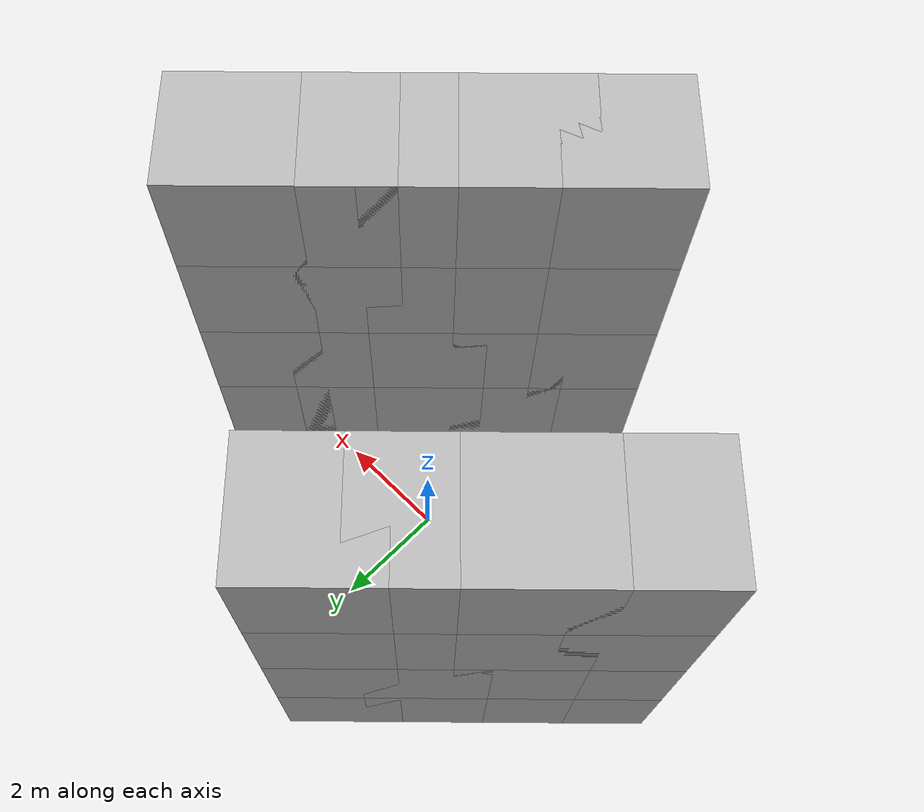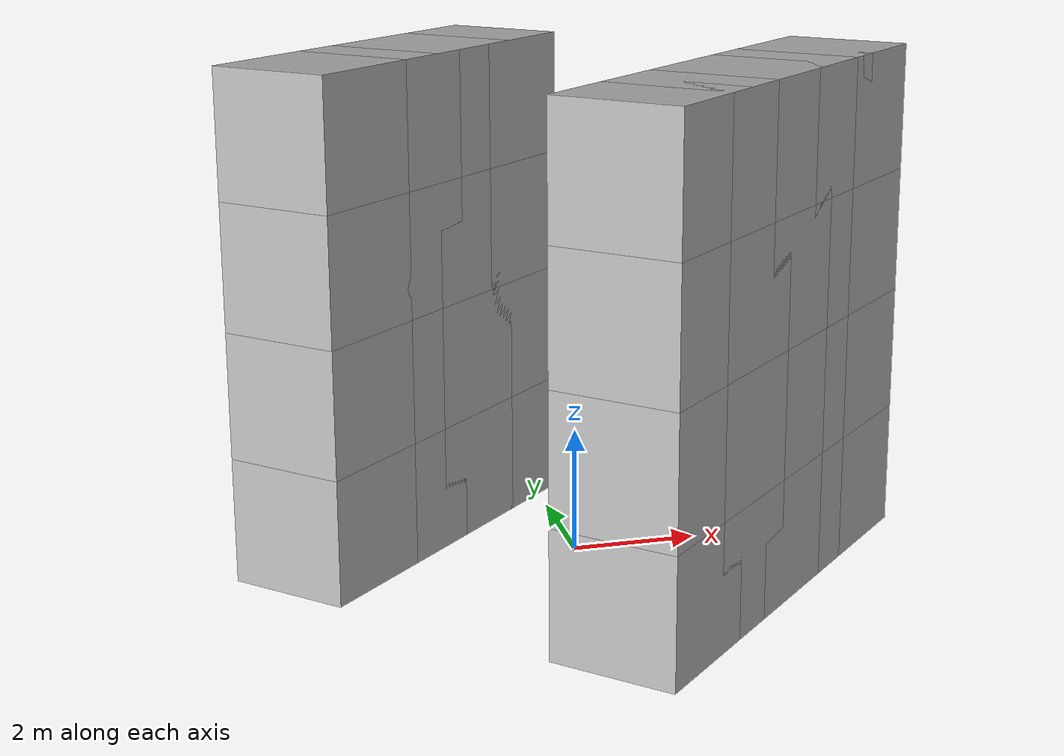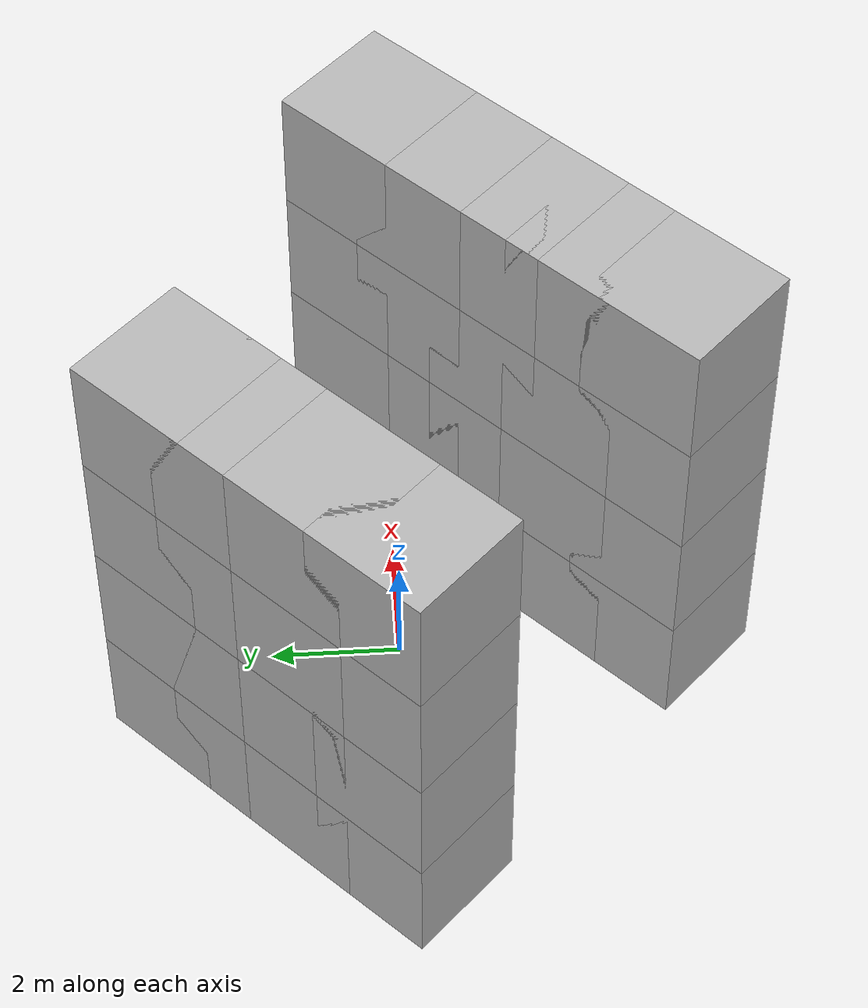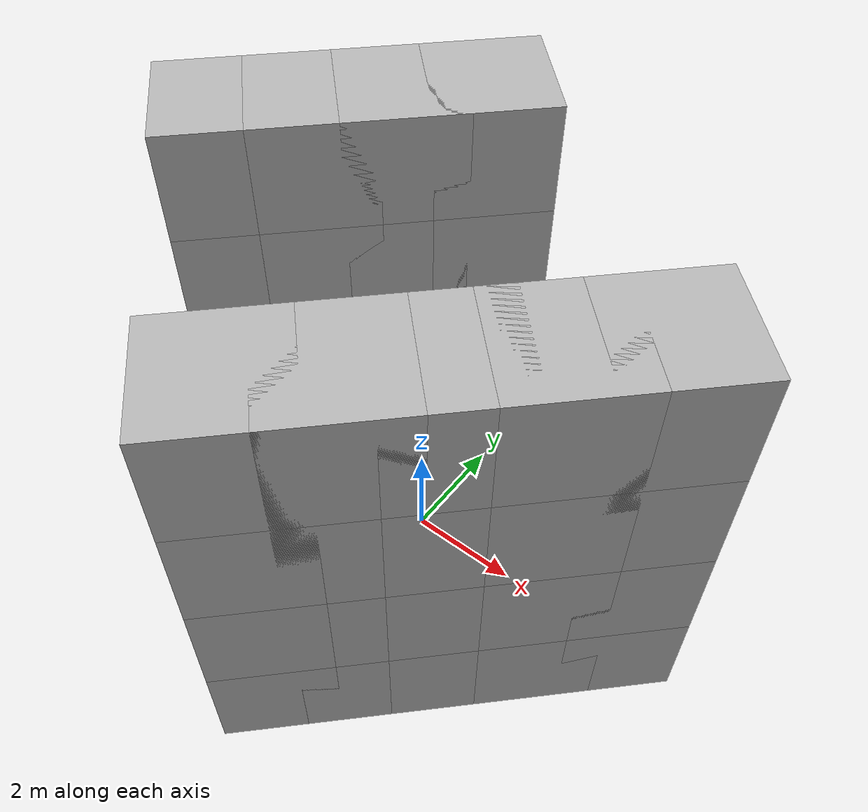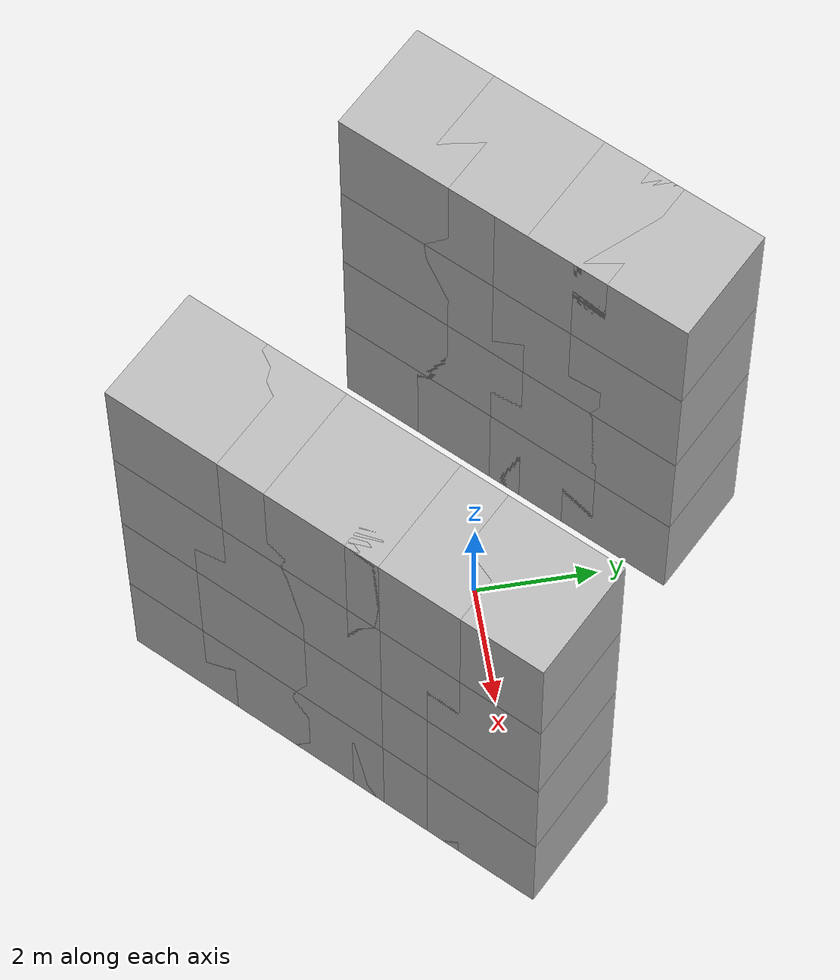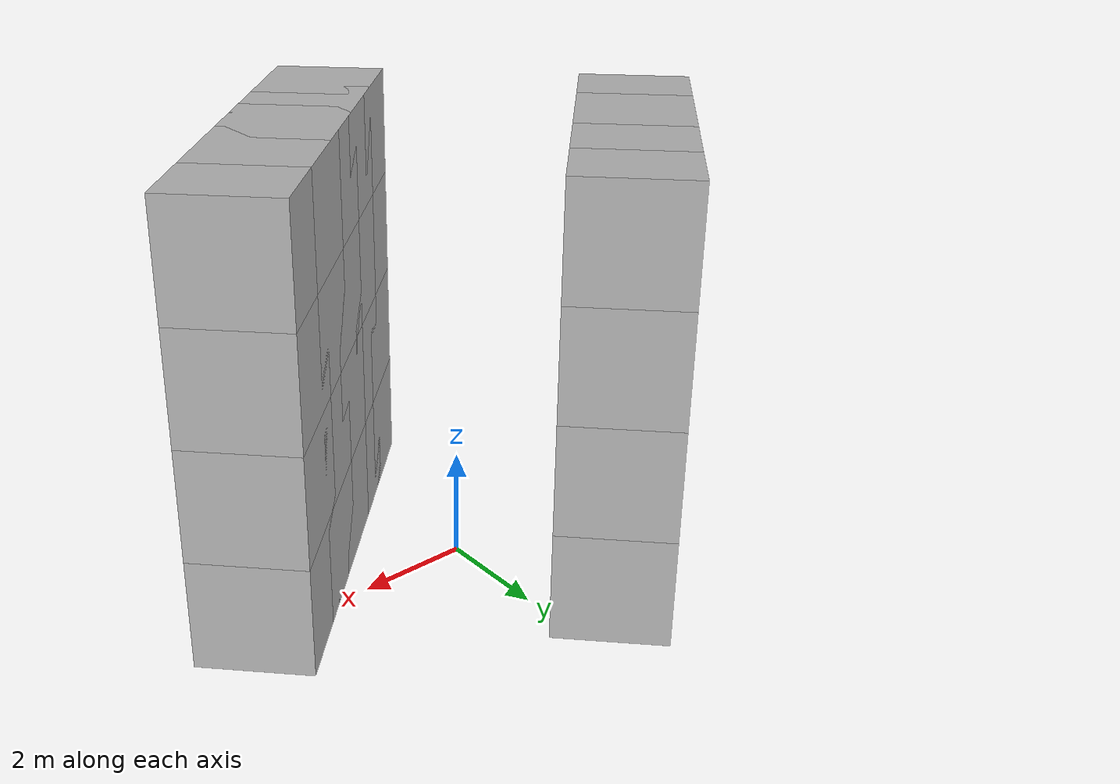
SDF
<sdf version="1.5">
 <world name="default">
  <include><uri>model://sun</uri></include>
  <physics name="default_physics" default="0" type="ode">
   <gravity>0 0 -9.8066</gravity>
   <ode>
    <solver>
     <type>quick</type>
     <iters>10</iters>
     <sor>1.3</sor>
     <use_dynamic_moi_rescaling>0</use_dynamic_moi_rescaling>
    </solver>
    <constraints>
     <cfm>0</cfm>
     <erp>0.2</erp>
     <contact_max_correcting_vel>100</contact_max_correcting_vel>
     <contact_surface_layer>0.001</contact_surface_layer>
    </constraints>
   </ode>
   <max_step_size>0.004</max_step_size>
   <real_time_factor>1</real_time_factor>
   <real_time_update_rate>250</real_time_update_rate>
   <magnetic_field>6.0e-6 2.3e-5 -4.2e-5</magnetic_field>
  </physics>
  <model name="obstacle_left_1">
   <static>true</static>
   <pose>-4 0 1 0 0 0.78539816339</pose>
   <link name="link">
    <collision name="collision"><geometry><box><size>2 2 2</size></box></geometry></collision>
    <visual name="visual"><geometry><box><size>2 2 2</size></box></geometry></visual>
   </link>
  </model>
  <model name="obstacle_left_11">
   <static>true</static>
   <pose>-4 0 3 0 0 0.78539816339</pose>
   <link name="link">
    <collision name="collision"><geometry><box><size>2 2 2</size></box></geometry></collision>
    <visual name="visual"><geometry><box><size>2 2 2</size></box></geometry></visual>
   </link>
  </model>
  <model name="obstacle_left_12">
   <static>true</static>
   <pose>-4 0 5 0 0 0.78539816339</pose>
   <link name="link">
    <collision name="collision"><geometry><box><size>2 2 2</size></box></geometry></collision>
    <visual name="visual"><geometry><box><size>2 2 2</size></box></geometry></visual>
   </link>
  </model>
  <model name="obstacle_left_13">
   <static>true</static>
   <pose>-4 0 7 0 0 0.78539816339</pose>
   <link name="link">
    <collision name="collision"><geometry><box><size>2 2 2</size></box></geometry></collision>
    <visual name="visual"><geometry><box><size>2 2 2</size></box></geometry></visual>
   </link>
  </model>
  <model name="obstacle_left_2">
   <static>true</static>
   <pose>-3 1 1 0 0 0.78539816339</pose>
   <link name="link">
    <collision name="collision"><geometry><box><size>2 2 2</size></box></geometry></collision>
    <visual name="visual"><geometry><box><size>2 2 2</size></box></geometry></visual>
   </link>
  </model>
  <model name="obstacle_left_21">
   <static>true</static>
   <pose>-3 1 3 0 0 0.78539816339</pose>
   <link name="link">
    <collision name="collision"><geometry><box><size>2 2 2</size></box></geometry></collision>
    <visual name="visual"><geometry><box><size>2 2 2</size></box></geometry></visual>
   </link>
  </model>
  <model name="obstacle_left_22">
   <static>true</static>
   <pose>-3 1 5 0 0 0.78539816339</pose>
   <link name="link">
    <collision name="collision"><geometry><box><size>2 2 2</size></box></geometry></collision>
    <visual name="visual"><geometry><box><size>2 2 2</size></box></geometry></visual>
   </link>
  </model>
  <model name="obstacle_left_23">
   <static>true</static>
   <pose>-3 1 7 0 0 0.78539816339</pose>
   <link name="link">
    <collision name="collision"><geometry><box><size>2 2 2</size></box></geometry></collision>
    <visual name="visual"><geometry><box><size>2 2 2</size></box></geometry></visual>
   </link>
  </model>
  <model name="obstacle_left_3">
   <static>true</static>
   <pose>-2 2 1 0 0 0.78539816339</pose>
   <link name="link">
    <collision name="collision"><geometry><box><size>2 2 2</size></box></geometry></collision>
    <visual name="visual"><geometry><box><size>2 2 2</size></box></geometry></visual>
   </link>
  </model>
  <model name="obstacle_left_31">
   <static>true</static>
   <pose>-2 2 3 0 0 0.78539816339</pose>
   <link name="link">
    <collision name="collision"><geometry><box><size>2 2 2</size></box></geometry></collision>
    <visual name="visual"><geometry><box><size>2 2 2</size></box></geometry></visual>
   </link>
  </model>
  <model name="obstacle_left_32">
   <static>true</static>
   <pose>-2 2 5 0 0 0.78539816339</pose>
   <link name="link">
    <collision name="collision"><geometry><box><size>2 2 2</size></box></geometry></collision>
    <visual name="visual"><geometry><box><size>2 2 2</size></box></geometry></visual>
   </link>
  </model>
  <model name="obstacle_left_33">
   <static>true</static>
   <pose>-2 2 7 0 0 0.78539816339</pose>
   <link name="link">
    <collision name="collision"><geometry><box><size>2 2 2</size></box></geometry></collision>
    <visual name="visual"><geometry><box><size>2 2 2</size></box></geometry></visual>
   </link>
  </model>
  <model name="obstacle_left_4">
   <static>true</static>
   <pose>-1 3 1 0 0 0.78539816339</pose>
   <link name="link">
    <collision name="collision"><geometry><box><size>2 2 2</size></box></geometry></collision>
    <visual name="visual"><geometry><box><size>2 2 2</size></box></geometry></visual>
   </link>
  </model>
  <model name="obstacle_left_41">
   <static>true</static>
   <pose>-1 3 3 0 0 0.78539816339</pose>
   <link name="link">
    <collision name="collision"><geometry><box><size>2 2 2</size></box></geometry></collision>
    <visual name="visual"><geometry><box><size>2 2 2</size></box></geometry></visual>
   </link>
  </model>
  <model name="obstacle_left_42">
   <static>true</static>
   <pose>-1 3 5 0 0 0.78539816339</pose>
   <link name="link">
    <collision name="collision"><geometry><box><size>2 2 2</size></box></geometry></collision>
    <visual name="visual"><geometry><box><size>2 2 2</size></box></geometry></visual>
   </link>
  </model>
  <model name="obstacle_left_43">
   <static>true</static>
   <pose>-1 3 7 0 0 0.78539816339</pose>
   <link name="link">
    <collision name="collision"><geometry><box><size>2 2 2</size></box></geometry></collision>
    <visual name="visual"><geometry><box><size>2 2 2</size></box></geometry></visual>
   </link>
  </model>
  <model name="obstacle_left_10">
   <static>true</static>
   <pose>4 0 1 0 0 0.78539816339</pose>
   <link name="link">
    <collision name="collision"><geometry><box><size>2 2 2</size></box></geometry></collision>
    <visual name="visual"><geometry><box><size>2 2 2</size></box></geometry></visual>
   </link>
  </model>
  <model name="obstacle_left_101">
   <static>true</static>
   <pose>4 0 3 0 0 0.78539816339</pose>
   <link name="link">
    <collision name="collision"><geometry><box><size>2 2 2</size></box></geometry></collision>
    <visual name="visual"><geometry><box><size>2 2 2</size></box></geometry></visual>
   </link>
  </model>
  <model name="obstacle_left_102">
   <static>true</static>
   <pose>4 0 5 0 0 0.78539816339</pose>
   <link name="link">
    <collision name="collision"><geometry><box><size>2 2 2</size></box></geometry></collision>
    <visual name="visual"><geometry><box><size>2 2 2</size></box></geometry></visual>
   </link>
  </model>
  <model name="obstacle_left_103">
   <static>true</static>
   <pose>4 0 7 0 0 0.78539816339</pose>
   <link name="link">
    <collision name="collision"><geometry><box><size>2 2 2</size></box></geometry></collision>
    <visual name="visual"><geometry><box><size>2 2 2</size></box></geometry></visual>
   </link>
  </model>
  <model name="obstacle_left_11">
   <static>true</static>
   <pose>3 -1 1 0 0 0.78539816339</pose>
   <link name="link">
    <collision name="collision"><geometry><box><size>2 2 2</size></box></geometry></collision>
    <visual name="visual"><geometry><box><size>2 2 2</size></box></geometry></visual>
   </link>
  </model>
  <model name="obstacle_left_111">
   <static>true</static>
   <pose>3 -1 3 0 0 0.78539816339</pose>
   <link name="link">
    <collision name="collision"><geometry><box><size>2 2 2</size></box></geometry></collision>
    <visual name="visual"><geometry><box><size>2 2 2</size></box></geometry></visual>
   </link>
  </model>
  <model name="obstacle_left_112">
   <static>true</static>
   <pose>3 -1 5 0 0 0.78539816339</pose>
   <link name="link">
    <collision name="collision"><geometry><box><size>2 2 2</size></box></geometry></collision>
    <visual name="visual"><geometry><box><size>2 2 2</size></box></geometry></visual>
   </link>
  </model>
  <model name="obstacle_left_113">
   <static>true</static>
   <pose>3 -1 7 0 0 0.78539816339</pose>
   <link name="link">
    <collision name="collision"><geometry><box><size>2 2 2</size></box></geometry></collision>
    <visual name="visual"><geometry><box><size>2 2 2</size></box></geometry></visual>
   </link>
  </model>
  <model name="obstacle_left_12">
   <static>true</static>
   <pose>2 -2 1 0 0 0.78539816339</pose>
   <link name="link">
    <collision name="collision"><geometry><box><size>2 2 2</size></box></geometry></collision>
    <visual name="visual"><geometry><box><size>2 2 2</size></box></geometry></visual>
   </link>
  </model>
  <model name="obstacle_left_121">
   <static>true</static>
   <pose>2 -2 3 0 0 0.78539816339</pose>
   <link name="link">
    <collision name="collision"><geometry><box><size>2 2 2</size></box></geometry></collision>
    <visual name="visual"><geometry><box><size>2 2 2</size></box></geometry></visual>
   </link>
  </model>
  <model name="obstacle_left_122">
   <static>true</static>
   <pose>2 -2 5 0 0 0.78539816339</pose>
   <link name="link">
    <collision name="collision"><geometry><box><size>2 2 2</size></box></geometry></collision>
    <visual name="visual"><geometry><box><size>2 2 2</size></box></geometry></visual>
   </link>
  </model>
  <model name="obstacle_left_123">
   <static>true</static>
   <pose>2 -2 7 0 0 0.78539816339</pose>
   <link name="link">
    <collision name="collision"><geometry><box><size>2 2 2</size></box></geometry></collision>
    <visual name="visual"><geometry><box><size>2 2 2</size></box></geometry></visual>
   </link>
  </model>
  <model name="obstacle_left_13">
   <static>true</static>
   <pose>1 -3 1 0 0 0.78539816339</pose>
   <link name="link">
    <collision name="collision"><geometry><box><size>2 2 2</size></box></geometry></collision>
    <visual name="visual"><geometry><box><size>2 2 2</size></box></geometry></visual>
   </link>
  </model>
  <model name="obstacle_left_131">
   <static>true</static>
   <pose>1 -3 3 0 0 0.78539816339</pose>
   <link name="link">
    <collision name="collision"><geometry><box><size>2 2 2</size></box></geometry></collision>
    <visual name="visual"><geometry><box><size>2 2 2</size></box></geometry></visual>
   </link>
  </model>
  <model name="obstacle_left_132">
   <static>true</static>
   <pose>1 -3 5 0 0 0.78539816339</pose>
   <link name="link">
    <collision name="collision"><geometry><box><size>2 2 2</size></box></geometry></collision>
    <visual name="visual"><geometry><box><size>2 2 2</size></box></geometry></visual>
   </link>
  </model>
  <model name="obstacle_left_133">
   <static>true</static>
   <pose>1 -3 7 0 0 0.78539816339</pose>
   <link name="link">
    <collision name="collision"><geometry><box><size>2 2 2</size></box></geometry></collision>
    <visual name="visual"><geometry><box><size>2 2 2</size></box></geometry></visual>
   </link>
  </model>
  <model name="obstacle_left_14">
   <static>true</static>
   <pose>0 -4 1 0 0 0.78539816339</pose>
   <link name="link">
    <collision name="collision"><geometry><box><size>2 2 2</size></box></geometry></collision>
    <visual name="visual"><geometry><box><size>2 2 2</size></box></geometry></visual>
   </link>
  </model>
  <model name="obstacle_left_141">
   <static>true</static>
   <pose>0 -4 3 0 0 0.78539816339</pose>
   <link name="link">
    <collision name="collision"><geometry><box><size>2 2 2</size></box></geometry></collision>
    <visual name="visual"><geometry><box><size>2 2 2</size></box></geometry></visual>
   </link>
  </model>
  <model name="obstacle_left_142">
   <static>true</static>
   <pose>0 -4 5 0 0 0.78539816339</pose>
   <link name="link">
    <collision name="collision"><geometry><box><size>2 2 2</size></box></geometry></collision>
    <visual name="visual"><geometry><box><size>2 2 2</size></box></geometry></visual>
   </link>
  </model>
  <model name="obstacle_left_143">
   <static>true</static>
   <pose>0 -4 7 0 0 0.78539816339</pose>
   <link name="link">
    <collision name="collision"><geometry><box><size>2 2 2</size></box></geometry></collision>
    <visual name="visual"><geometry><box><size>2 2 2</size></box></geometry></visual>
   </link>
  </model>
 </world>
</sdf>
